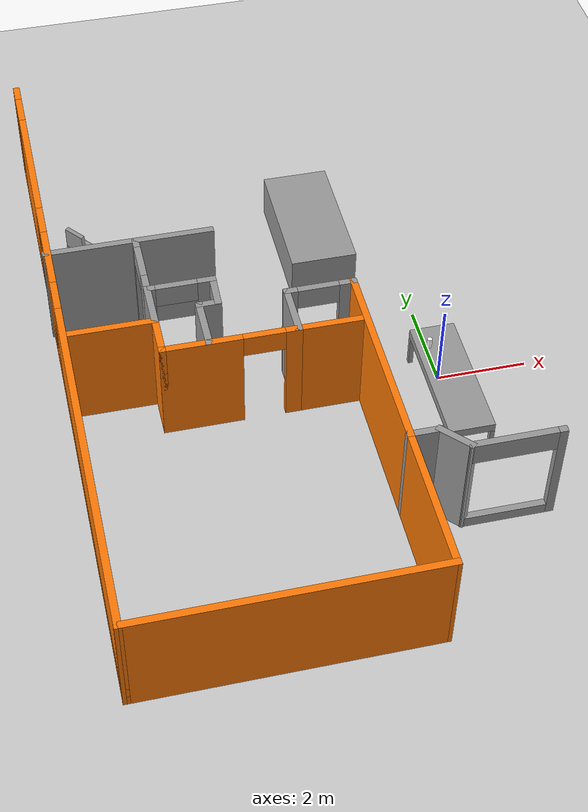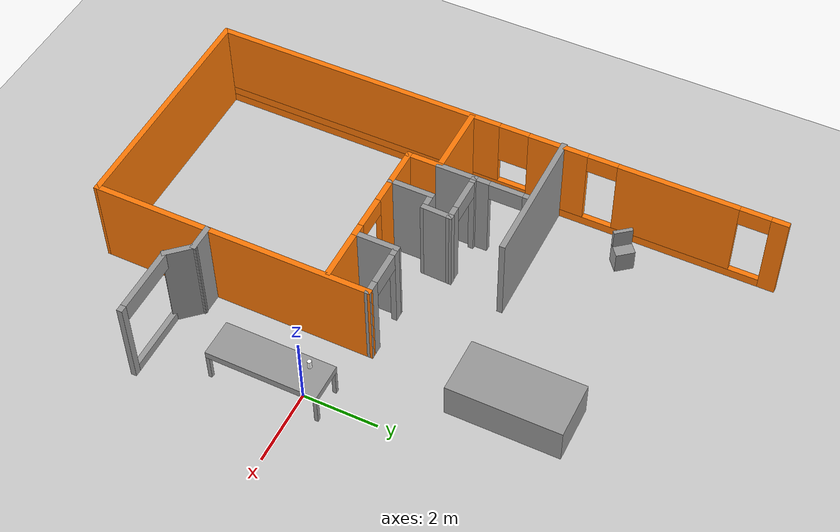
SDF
<sdf version="1.6">
 <world name="default">
  <model name="ground_plane">
   <static>1</static>
   <link name="link">
    <collision name="collision">
     <geometry><plane><normal>0 0 1</normal><size>100 100</size></plane></geometry>
     <surface><friction><ode><mu>100</mu><mu2>50</mu2></ode></friction></surface>
    </collision>
    <visual name="visual">
     <cast_shadows>0</cast_shadows>
     <geometry><plane><normal>0 0 1</normal><size>100 100</size></plane></geometry>
     <material>
      <script><uri>file://media/materials/scripts/gazebo.material</uri><name>Gazebo/Grey</name></script>
     </material>
    </visual>
   </link>
  </model>
  <model name="MDP-Home">
   <pose>0.766606 1.22436 0 0 -0 0</pose>
   <link name="Wall_0">
    <pose>-8.74311 -0.006919 0 0 0 -1.57011</pose>
    <visual name="Wall_0_Visual_0">
     <pose>-7.6212 0 1.25 0 -0 0</pose>
     <geometry><box><size>0.454575 0.15 2.5</size></box></geometry>
     <material>
      <script><uri>file://media/materials/scripts/gazebo.material</uri><name>Gazebo/Grey</name></script>
      <ambient>0.996078 0.47451 0.0196078 1</ambient>
     </material>
     <meta><layer>0</layer></meta>
    </visual>
    <collision name="Wall_0_Collision_0">
     <geometry><box><size>0.454575 0.15 2.5</size></box></geometry>
     <pose>-7.6212 0 1.25 0 -0 0</pose>
    </collision>
    <visual name="Wall_0_Visual_1">
     <pose>0.227288 0 0.125 0 -0 0</pose>
     <geometry><box><size>15.2424 0.15 0.25</size></box></geometry>
     <material>
      <script><uri>file://media/materials/scripts/gazebo.material</uri><name>Gazebo/Grey</name></script>
      <ambient>0.996078 0.47451 0.0196078 1</ambient>
     </material>
     <meta><layer>0</layer></meta>
    </visual>
    <collision name="Wall_0_Collision_1">
     <geometry><box><size>15.2424 0.15 0.25</size></box></geometry>
     <pose>0.227288 0 0.125 0 -0 0</pose>
    </collision>
    <visual name="Wall_0_Visual_2">
     <pose>-5.00939 0 1.375 0 -0 0</pose>
     <geometry><box><size>3.16905 0.15 2.25</size></box></geometry>
     <material>
      <script><uri>file://media/materials/scripts/gazebo.material</uri><name>Gazebo/Grey</name></script>
      <ambient>0.996078 0.47451 0.0196078 1</ambient>
     </material>
     <meta><layer>0</layer></meta>
    </visual>
    <collision name="Wall_0_Collision_2">
     <geometry><box><size>3.16905 0.15 2.25</size></box></geometry>
     <pose>-5.00939 0 1.375 0 -0 0</pose>
    </collision>
    <visual name="Wall_0_Visual_3">
     <pose>-1.82212 0 1.375 0 -0 0</pose>
     <geometry><box><size>1.6055 0.15 2.25</size></box></geometry>
     <material>
      <script><uri>file://media/materials/scripts/gazebo.material</uri><name>Gazebo/Grey</name></script>
      <ambient>0.996078 0.47451 0.0196078 1</ambient>
     </material>
     <meta><layer>0</layer></meta>
    </visual>
    <collision name="Wall_0_Collision_3">
     <geometry><box><size>1.6055 0.15 2.25</size></box></geometry>
     <pose>-1.82212 0 1.375 0 -0 0</pose>
    </collision>
    <visual name="Wall_0_Visual_4">
     <pose>3.41456 0 0.375 0 -0 0</pose>
     <geometry><box><size>8.86785 0.15 0.25</size></box></geometry>
     <material>
      <script><uri>file://media/materials/scripts/gazebo.material</uri><name>Gazebo/Grey</name></script>
      <ambient>0.996078 0.47451 0.0196078 1</ambient>
     </material>
     <meta><layer>0</layer></meta>
    </visual>
    <collision name="Wall_0_Collision_4">
     <geometry><box><size>8.86785 0.15 0.25</size></box></geometry>
     <pose>3.41456 0 0.375 0 -0 0</pose>
    </collision>
    <visual name="Wall_0_Visual_5">
     <pose>3.81456 0 1.5 0 -0 0</pose>
     <geometry><box><size>8.06785 0.15 2</size></box></geometry>
     <material>
      <script><uri>file://media/materials/scripts/gazebo.material</uri><name>Gazebo/Grey</name></script>
      <ambient>0.996078 0.47451 0.0196078 1</ambient>
     </material>
     <meta><layer>0</layer></meta>
    </visual>
    <collision name="Wall_0_Collision_5">
     <geometry><box><size>8.06785 0.15 2</size></box></geometry>
     <pose>3.81456 0 1.5 0 -0 0</pose>
    </collision>
    <visual name="Wall_0_Visual_6">
     <pose>-0.619366 0 1.9 0 -0 0</pose>
     <geometry><box><size>0.8 0.15 1.2</size></box></geometry>
     <material>
      <script><uri>file://media/materials/scripts/gazebo.material</uri><name>Gazebo/Grey</name></script>
      <ambient>0.996078 0.47451 0.0196078 1</ambient>
     </material>
     <meta><layer>0</layer></meta>
    </visual>
    <collision name="Wall_0_Collision_6">
     <geometry><box><size>0.8 0.15 1.2</size></box></geometry>
     <pose>-0.619366 0 1.9 0 -0 0</pose>
    </collision>
    <visual name="Wall_0_Visual_7">
     <pose>-6.99391 0 2.25 0 -0 0</pose>
     <geometry><box><size>0.8 0.15 0.5</size></box></geometry>
     <material>
      <script><uri>file://media/materials/scripts/gazebo.material</uri><name>Gazebo/Grey</name></script>
      <ambient>0.996078 0.47451 0.0196078 1</ambient>
     </material>
     <meta><layer>0</layer></meta>
    </visual>
    <collision name="Wall_0_Collision_7">
     <geometry><box><size>0.8 0.15 0.5</size></box></geometry>
     <pose>-6.99391 0 2.25 0 -0 0</pose>
    </collision>
    <visual name="Wall_0_Visual_8">
     <pose>-3.02487 0 2.25 0 -0 0</pose>
     <geometry><box><size>0.8 0.15 0.5</size></box></geometry>
     <material>
      <script><uri>file://media/materials/scripts/gazebo.material</uri><name>Gazebo/Grey</name></script>
      <ambient>0.996078 0.47451 0.0196078 1</ambient>
     </material>
     <meta><layer>0</layer></meta>
    </visual>
    <collision name="Wall_0_Collision_8">
     <geometry><box><size>0.8 0.15 0.5</size></box></geometry>
     <pose>-3.02487 0 2.25 0 -0 0</pose>
    </collision>
   </link>
   <link name="Wall_131">
    <collision name="Wall_131_Collision">
     <geometry><box><size>4.5 0.15 2.5</size></box></geometry>
     <pose>0 0 1.25 0 -0 0</pose>
    </collision>
    <visual name="Wall_131_Visual">
     <pose>0 0 1.25 0 -0 0</pose>
     <geometry><box><size>4.5 0.15 2.5</size></box></geometry>
     <material>
      <script><uri>file://media/materials/scripts/gazebo.material</uri><name>Gazebo/Grey</name></script>
      <ambient>0.996078 0.47451 0.0196078 1</ambient>
     </material>
     <meta><layer>0</layer></meta>
    </visual>
    <pose>-2.5378 -2.48595 0 0 -0 1.5708</pose>
   </link>
   <link name="Wall_133">
    <collision name="Wall_133_Collision">
     <geometry><box><size>1.5 0.15 2.5</size></box></geometry>
     <pose>0 0 1.25 0 -0 0</pose>
    </collision>
    <visual name="Wall_133_Visual">
     <pose>0 0 1.25 0 -0 0</pose>
     <geometry><box><size>1.5 0.15 2.5</size></box></geometry>
     <material>
      <script><uri>file://media/materials/scripts/gazebo.material</uri><name>Gazebo/Grey</name></script>
      <ambient>0.996078 0.47451 0.0196078 1</ambient>
     </material>
     <meta><layer>0</layer></meta>
    </visual>
    <pose>-3.31137 -1.41633 0 0 -0 3.14159</pose>
   </link>
   <link name="Wall_134">
    <collision name="Wall_134_Collision">
     <geometry><box><size>1.25 0.15 2.5</size></box></geometry>
     <pose>0 0 1.25 0 -0 0</pose>
    </collision>
    <visual name="Wall_134_Visual">
     <pose>0 0 1.25 0 -0 0</pose>
     <geometry><box><size>1.25 0.15 2.5</size></box></geometry>
     <material>
      <script><uri>file://media/materials/scripts/gazebo.material</uri><name>Gazebo/Grey</name></script>
      <ambient>1 1 1 1</ambient>
     </material>
     <meta><layer>0</layer></meta>
    </visual>
    <pose>-3.98637 -0.866325 0 0 -0 1.5708</pose>
   </link>
   <link name="Wall_135">
    <pose>-3.26208 -0.313636 0 0 -0 0.003712</pose>
    <visual name="Wall_135_Visual_0">
     <pose>-0.646197 0 1.25 0 -0 0</pose>
     <geometry><box><size>0.306179 0.15 2.5</size></box></geometry>
     <material>
      <script><uri>file://media/materials/scripts/gazebo.material</uri><name>Gazebo/Grey</name></script>
      <ambient>1 1 1 1</ambient>
     </material>
     <meta><layer>0</layer></meta>
    </visual>
    <collision name="Wall_135_Collision_0">
     <geometry><box><size>0.306179 0.15 2.5</size></box></geometry>
     <pose>-0.646197 0 1.25 0 -0 0</pose>
    </collision>
    <visual name="Wall_135_Visual_1">
     <pose>0.60309 0 1.25 0 -0 0</pose>
     <geometry><box><size>0.392394 0.15 2.5</size></box></geometry>
     <material>
      <script><uri>file://media/materials/scripts/gazebo.material</uri><name>Gazebo/Grey</name></script>
      <ambient>1 1 1 1</ambient>
     </material>
     <meta><layer>0</layer></meta>
    </visual>
    <collision name="Wall_135_Collision_1">
     <geometry><box><size>0.392394 0.15 2.5</size></box></geometry>
     <pose>0.60309 0 1.25 0 -0 0</pose>
    </collision>
    <visual name="Wall_135_Visual_2">
     <pose>-0.043107 0 2.25 0 -0 0</pose>
     <geometry><box><size>0.9 0.15 0.5</size></box></geometry>
     <material>
      <script><uri>file://media/materials/scripts/gazebo.material</uri><name>Gazebo/Grey</name></script>
      <ambient>1 1 1 1</ambient>
     </material>
     <meta><layer>0</layer></meta>
    </visual>
    <collision name="Wall_135_Collision_2">
     <geometry><box><size>0.9 0.15 0.5</size></box></geometry>
     <pose>-0.043107 0 2.25 0 -0 0</pose>
    </collision>
   </link>
   <link name="Wall_137">
    <pose>-5.41137 -1.41633 0 0 -0 3.14159</pose>
    <visual name="Wall_137_Visual_0">
     <pose>-1.32646 0 1.25 0 -0 0</pose>
     <geometry><box><size>0.347086 0.15 2.5</size></box></geometry>
     <material>
      <script><uri>file://media/materials/scripts/gazebo.material</uri><name>Gazebo/Grey</name></script>
      <ambient>0.996078 0.47451 0.0196078 1</ambient>
     </material>
     <meta><layer>0</layer></meta>
    </visual>
    <collision name="Wall_137_Collision_0">
     <geometry><box><size>0.347086 0.15 2.5</size></box></geometry>
     <pose>-1.32646 0 1.25 0 -0 0</pose>
    </collision>
    <visual name="Wall_137_Visual_1">
     <pose>0.623543 0 1.25 0 -0 0</pose>
     <geometry><box><size>1.75291 0.15 2.5</size></box></geometry>
     <material>
      <script><uri>file://media/materials/scripts/gazebo.material</uri><name>Gazebo/Grey</name></script>
      <ambient>0.996078 0.47451 0.0196078 1</ambient>
     </material>
     <meta><layer>0</layer></meta>
    </visual>
    <collision name="Wall_137_Collision_1">
     <geometry><box><size>1.75291 0.15 2.5</size></box></geometry>
     <pose>0.623543 0 1.25 0 -0 0</pose>
    </collision>
    <visual name="Wall_137_Visual_2">
     <pose>-0.702914 0 2.25 0 -0 0</pose>
     <geometry><box><size>0.9 0.15 0.5</size></box></geometry>
     <material>
      <script><uri>file://media/materials/scripts/gazebo.material</uri><name>Gazebo/Grey</name></script>
      <ambient>0.996078 0.47451 0.0196078 1</ambient>
     </material>
     <meta><layer>0</layer></meta>
    </visual>
    <collision name="Wall_137_Collision_2">
     <geometry><box><size>0.9 0.15 0.5</size></box></geometry>
     <pose>-0.702914 0 2.25 0 -0 0</pose>
    </collision>
   </link>
   <link name="Wall_138">
    <collision name="Wall_138_Collision">
     <geometry><box><size>1 0.15 2.5</size></box></geometry>
     <pose>0 0 1.25 0 -0 0</pose>
    </collision>
    <visual name="Wall_138_Visual">
     <pose>0 0 1.25 0 -0 0</pose>
     <geometry><box><size>1 0.15 2.5</size></box></geometry>
     <material>
      <script><uri>file://media/materials/scripts/gazebo.material</uri><name>Gazebo/Grey</name></script>
      <ambient>0.996078 0.47451 0.0196078 1</ambient>
     </material>
     <meta><layer>0</layer></meta>
    </visual>
    <pose>-6.83637 -0.991325 0 0 -0 1.5708</pose>
   </link>
   <link name="Wall_139">
    <collision name="Wall_139_Collision">
     <geometry><box><size>2 0.15 2.5</size></box></geometry>
     <pose>0 0 1.25 0 -0 0</pose>
    </collision>
    <visual name="Wall_139_Visual">
     <pose>0 0 1.25 0 -0 0</pose>
     <geometry><box><size>2 0.15 2.5</size></box></geometry>
     <material>
      <script><uri>file://media/materials/scripts/gazebo.material</uri><name>Gazebo/Grey</name></script>
      <ambient>0.996078 0.47451 0.0196078 1</ambient>
     </material>
     <meta><layer>0</layer></meta>
    </visual>
    <pose>-7.76137 -0.566325 0 0 -0 3.14159</pose>
   </link>
   <link name="Wall_141">
    <collision name="Wall_141_Collision">
     <geometry><box><size>1.10559 0.15 2.5</size></box></geometry>
     <pose>0 0 1.25 0 -0 0</pose>
    </collision>
    <visual name="Wall_141_Visual">
     <pose>0 0 1.25 0 -0 0</pose>
     <geometry><box><size>1.10559 0.15 2.5</size></box></geometry>
     <material>
      <script><uri>file://media/materials/scripts/gazebo.material</uri><name>Gazebo/Grey</name></script>
      <ambient>1 1 1 1</ambient>
     </material>
     <meta><layer>0</layer></meta>
    </visual>
    <pose>-6.83637 -0.088528 0 0 -0 1.5708</pose>
   </link>
   <link name="Wall_142">
    <pose>-6.13522 0.389268 0 0 -0 0</pose>
    <visual name="Wall_142_Visual_0">
     <pose>-0.655259 0 1.25 0 -0 0</pose>
     <geometry><box><size>0.241775 0.15 2.5</size></box></geometry>
     <material>
      <script><uri>file://media/materials/scripts/gazebo.material</uri><name>Gazebo/Grey</name></script>
      <ambient>1 1 1 1</ambient>
     </material>
     <meta><layer>0</layer></meta>
    </visual>
    <collision name="Wall_142_Collision_0">
     <geometry><box><size>0.241775 0.15 2.5</size></box></geometry>
     <pose>-0.655259 0 1.25 0 -0 0</pose>
    </collision>
    <visual name="Wall_142_Visual_1">
     <pose>0.570887 0 1.25 0 -0 0</pose>
     <geometry><box><size>0.410518 0.15 2.5</size></box></geometry>
     <material>
      <script><uri>file://media/materials/scripts/gazebo.material</uri><name>Gazebo/Grey</name></script>
      <ambient>1 1 1 1</ambient>
     </material>
     <meta><layer>0</layer></meta>
    </visual>
    <collision name="Wall_142_Collision_1">
     <geometry><box><size>0.410518 0.15 2.5</size></box></geometry>
     <pose>0.570887 0 1.25 0 -0 0</pose>
    </collision>
    <visual name="Wall_142_Visual_2">
     <pose>-0.084372 0 2.25 0 -0 0</pose>
     <geometry><box><size>0.9 0.15 0.5</size></box></geometry>
     <material>
      <script><uri>file://media/materials/scripts/gazebo.material</uri><name>Gazebo/Grey</name></script>
      <ambient>1 1 1 1</ambient>
     </material>
     <meta><layer>0</layer></meta>
    </visual>
    <collision name="Wall_142_Collision_2">
     <geometry><box><size>0.9 0.15 0.5</size></box></geometry>
     <pose>-0.084372 0 2.25 0 -0 0</pose>
    </collision>
   </link>
   <link name="Wall_145">
    <collision name="Wall_145_Collision">
     <geometry><box><size>0.552293 0.15 2.5</size></box></geometry>
     <pose>0 0 1.25 0 -0 0</pose>
    </collision>
    <visual name="Wall_145_Visual">
     <pose>0 0 1.25 0 -0 0</pose>
     <geometry><box><size>0.552293 0.15 2.5</size></box></geometry>
     <material>
      <script><uri>file://media/materials/scripts/gazebo.material</uri><name>Gazebo/Grey</name></script>
      <ambient>1 1 1 1</ambient>
     </material>
     <meta><layer>0</layer></meta>
    </visual>
    <pose>-5.65934 -0.312691 0 0 -0 3.14159</pose>
   </link>
   <link name="Wall_146">
    <collision name="Wall_146_Collision">
     <geometry><box><size>1.25 0.15 2.5</size></box></geometry>
     <pose>0 0 1.25 0 -0 0</pose>
    </collision>
    <visual name="Wall_146_Visual">
     <pose>0 0 1.25 0 -0 0</pose>
     <geometry><box><size>1.25 0.15 2.5</size></box></geometry>
     <material>
      <script><uri>file://media/materials/scripts/gazebo.material</uri><name>Gazebo/Grey</name></script>
      <ambient>1 1 1 1</ambient>
     </material>
     <meta><layer>0</layer></meta>
    </visual>
    <pose>-5.86049 -0.862691 0 0 0 -1.5708</pose>
   </link>
   <link name="Wall_148">
    <collision name="Wall_148_Collision">
     <geometry><box><size>0.852373 0.15 2.5</size></box></geometry>
     <pose>0 0 1.25 0 -0 0</pose>
    </collision>
    <visual name="Wall_148_Visual">
     <pose>0 0 1.25 0 -0 0</pose>
     <geometry><box><size>0.852373 0.15 2.5</size></box></geometry>
     <material>
      <script><uri>file://media/materials/scripts/gazebo.material</uri><name>Gazebo/Grey</name></script>
      <ambient>1 1 1 1</ambient>
     </material>
     <meta><layer>0</layer></meta>
    </visual>
    <pose>-5.44613 0.048748 0 0 0 -1.60515</pose>
   </link>
   <link name="Wall_151">
    <collision name="Wall_151_Collision">
     <geometry><box><size>3.75 0.15 2.5</size></box></geometry>
     <pose>0 0 1.25 0 -0 0</pose>
    </collision>
    <visual name="Wall_151_Visual">
     <pose>0 0 1.25 0 -0 0</pose>
     <geometry><box><size>3.75 0.15 2.5</size></box></geometry>
     <material>
      <script><uri>file://media/materials/scripts/gazebo.material</uri><name>Gazebo/Grey</name></script>
      <ambient>1 1 1 1</ambient>
     </material>
     <meta><layer>0</layer></meta>
    </visual>
    <pose>-6.98461 1.92195 0 0 -0 0</pose>
   </link>
   <link name="Wall_153">
    <pose>-6.83637 1.13927 0 0 -0 1.5708</pose>
    <visual name="Wall_153_Visual_0">
     <pose>-0.580189 0 1.25 0 -0 0</pose>
     <geometry><box><size>0.489621 0.15 2.5</size></box></geometry>
     <material>
      <script><uri>file://media/materials/scripts/gazebo.material</uri><name>Gazebo/Grey</name></script>
      <ambient>1 1 1 1</ambient>
     </material>
     <meta><layer>0</layer></meta>
    </visual>
    <collision name="Wall_153_Collision_0">
     <geometry><box><size>0.489621 0.15 2.5</size></box></geometry>
     <pose>-0.580189 0 1.25 0 -0 0</pose>
    </collision>
    <visual name="Wall_153_Visual_1">
     <pose>0.694811 0 1.25 0 -0 0</pose>
     <geometry><box><size>0.260379 0.15 2.5</size></box></geometry>
     <material>
      <script><uri>file://media/materials/scripts/gazebo.material</uri><name>Gazebo/Grey</name></script>
      <ambient>1 1 1 1</ambient>
     </material>
     <meta><layer>0</layer></meta>
    </visual>
    <collision name="Wall_153_Collision_1">
     <geometry><box><size>0.260379 0.15 2.5</size></box></geometry>
     <pose>0.694811 0 1.25 0 -0 0</pose>
    </collision>
    <visual name="Wall_153_Visual_2">
     <pose>0.114621 0 2.25 0 -0 0</pose>
     <geometry><box><size>0.9 0.15 0.5</size></box></geometry>
     <material>
      <script><uri>file://media/materials/scripts/gazebo.material</uri><name>Gazebo/Grey</name></script>
      <ambient>1 1 1 1</ambient>
     </material>
     <meta><layer>0</layer></meta>
    </visual>
    <collision name="Wall_153_Collision_2">
     <geometry><box><size>0.9 0.15 0.5</size></box></geometry>
     <pose>0.114621 0 2.25 0 -0 0</pose>
    </collision>
   </link>
   <link name="Wall_84">
    <pose>-0.516292 -5.18335 0 0 -0 3.14159</pose>
    <visual name="Wall_84_Visual_0">
     <pose>-0.910278 0 1.25 0 -0 0</pose>
     <geometry><box><size>0.179444 0.15 2.5</size></box></geometry>
     <material>
      <script><uri>file://media/materials/scripts/gazebo.material</uri><name>Gazebo/Grey</name></script>
      <ambient>1 1 1 1</ambient>
     </material>
     <meta><layer>0</layer></meta>
    </visual>
    <collision name="Wall_84_Collision_0">
     <geometry><box><size>0.179444 0.15 2.5</size></box></geometry>
     <pose>-0.910278 0 1.25 0 -0 0</pose>
    </collision>
    <visual name="Wall_84_Visual_1">
     <pose>0.089722 0 0.125 0 -0 0</pose>
     <geometry><box><size>1.82056 0.15 0.25</size></box></geometry>
     <material>
      <script><uri>file://media/materials/scripts/gazebo.material</uri><name>Gazebo/Grey</name></script>
      <ambient>1 1 1 1</ambient>
     </material>
     <meta><layer>0</layer></meta>
    </visual>
    <collision name="Wall_84_Collision_1">
     <geometry><box><size>1.82056 0.15 0.25</size></box></geometry>
     <pose>0.089722 0 0.125 0 -0 0</pose>
    </collision>
    <visual name="Wall_84_Visual_2">
     <pose>0.970722 0 1.375 0 -0 0</pose>
     <geometry><box><size>0.058556 0.15 2.25</size></box></geometry>
     <material>
      <script><uri>file://media/materials/scripts/gazebo.material</uri><name>Gazebo/Grey</name></script>
      <ambient>1 1 1 1</ambient>
     </material>
     <meta><layer>0</layer></meta>
    </visual>
    <collision name="Wall_84_Collision_2">
     <geometry><box><size>0.058556 0.15 2.25</size></box></geometry>
     <pose>0.970722 0 1.375 0 -0 0</pose>
    </collision>
    <visual name="Wall_84_Visual_3">
     <pose>0.060444 0 2.25 0 -0 0</pose>
     <geometry><box><size>1.762 0.15 0.5</size></box></geometry>
     <material>
      <script><uri>file://media/materials/scripts/gazebo.material</uri><name>Gazebo/Grey</name></script>
      <ambient>1 1 1 1</ambient>
     </material>
     <meta><layer>0</layer></meta>
    </visual>
    <collision name="Wall_84_Collision_3">
     <geometry><box><size>1.762 0.15 0.5</size></box></geometry>
     <pose>0.060444 0 2.25 0 -0 0</pose>
    </collision>
   </link>
   <link name="Wall_86">
    <collision name="Wall_86_Collision">
     <geometry><box><size>0.862046 0.15 2.5</size></box></geometry>
     <pose>0 0 1.25 0 -0 0</pose>
    </collision>
    <visual name="Wall_86_Visual">
     <pose>0 0 1.25 0 -0 0</pose>
     <geometry><box><size>0.862046 0.15 2.5</size></box></geometry>
     <material>
      <script><uri>file://media/materials/scripts/gazebo.material</uri><name>Gazebo/Grey</name></script>
      <ambient>1 1 1 1</ambient>
     </material>
     <meta><layer>0</layer></meta>
    </visual>
    <pose>-1.69556 -4.92215 0 0 0 -0.823044</pose>
   </link>
   <link name="Wall_88">
    <collision name="Wall_88_Collision">
     <geometry><box><size>0.75 0.15 2.5</size></box></geometry>
     <pose>0 0 1.25 0 -0 0</pose>
    </collision>
    <visual name="Wall_88_Visual">
     <pose>0 0 1.25 0 -0 0</pose>
     <geometry><box><size>0.75 0.15 2.5</size></box></geometry>
     <material>
      <script><uri>file://media/materials/scripts/gazebo.material</uri><name>Gazebo/Grey</name></script>
      <ambient>1 1 1 1</ambient>
     </material>
     <meta><layer>0</layer></meta>
    </visual>
    <pose>-2.2378 -4.66095 0 0 -0 3.14159</pose>
   </link>
   <link name="Wall_94">
    <collision name="Wall_94_Collision">
     <geometry><box><size>3.25 0.15 2.5</size></box></geometry>
     <pose>0 0 1.25 0 -0 0</pose>
    </collision>
    <visual name="Wall_94_Visual">
     <pose>0 0 1.25 0 -0 0</pose>
     <geometry><box><size>3.25 0.15 2.5</size></box></geometry>
     <material>
      <script><uri>file://media/materials/scripts/gazebo.material</uri><name>Gazebo/Grey</name></script>
      <ambient>0.996078 0.47451 0.0196078 1</ambient>
     </material>
     <meta><layer>0</layer></meta>
    </visual>
    <pose>-2.5378 -6.21095 0 0 0 -1.5708</pose>
   </link>
   <link name="Wall_98">
    <collision name="Wall_98_Collision">
     <geometry><box><size>6.35 0.15 2.5</size></box></geometry>
     <pose>0 0 1.25 0 -0 0</pose>
    </collision>
    <visual name="Wall_98_Visual">
     <pose>0 0 1.25 0 -0 0</pose>
     <geometry><box><size>6.35 0.15 2.5</size></box></geometry>
     <material>
      <script><uri>file://media/materials/scripts/gazebo.material</uri><name>Gazebo/Grey</name></script>
      <ambient>0.996078 0.47451 0.0196078 1</ambient>
     </material>
     <meta><layer>0</layer></meta>
    </visual>
    <pose>-5.63779 -7.77067 0 0 0 -3.13845</pose>
   </link>
   <static>1</static>
  </model>
  <model name="Island">
   <link name="link_0">
    <inertial>
     <mass>1</mass>
     <inertia>
      <ixx>0.166667</ixx>
      <ixy>0</ixy>
      <ixz>0</ixz>
      <iyy>0.166667</iyy>
      <iyz>0</iyz>
      <izz>0.166667</izz>
     </inertia>
    </inertial>
    <visual name="visual">
     <geometry><box><size>1.5 3 1</size></box></geometry>
     <material>
      <lighting>1</lighting>
      <script><uri>file://media/materials/scripts/gazebo.material</uri><name>Gazebo/Grey</name></script>
      <shader type="pixel"><normal_map>__default__</normal_map></shader>
      <ambient>0.3 0.3 0.3 1</ambient>
      <diffuse>0.7 0.7 0.7 1</diffuse>
      <specular>0.01 0.01 0.01 1</specular>
      <emissive>0 0 0 1</emissive>
     </material>
    </visual>
    <collision name="collision">
     <geometry><box><size>1.5 3 1</size></box></geometry>
     <surface>
      <friction>
       <ode><mu>1</mu><mu2>1</mu2><fdir1>0 0 0</fdir1><slip1>0</slip1><slip2>0</slip2></ode>
       <torsional>
        <coefficient>1</coefficient>
        <patch_radius>0</patch_radius>
        <surface_radius>0</surface_radius>
        <use_patch_radius>1</use_patch_radius>
        <ode><slip>0</slip></ode>
       </torsional>
      </friction>
      <bounce><restitution_coefficient>0</restitution_coefficient><threshold>1e+06</threshold></bounce>
      <contact>
       <collide_without_contact>0</collide_without_contact>
       <collide_without_contact_bitmask>1</collide_without_contact_bitmask>
       <collide_bitmask>1</collide_bitmask>
       <ode>
        <soft_cfm>0</soft_cfm>
        <soft_erp>0.2</soft_erp>
        <kp>1e+13</kp>
        <kd>1</kd>
        <max_vel>0.01</max_vel>
        <min_depth>0</min_depth>
       </ode>
       <bullet>
        <split_impulse>1</split_impulse>
        <split_impulse_penetration_threshold>-0.01</split_impulse_penetration_threshold>
        <soft_cfm>0</soft_cfm>
        <soft_erp>0.2</soft_erp>
        <kp>1e+13</kp>
        <kd>1</kd>
       </bullet>
      </contact>
     </surface>
    </collision>
   </link>
   <static>0</static>
   <pose>-1.7979 4.72135 0.499995 -0 6e-06 6e-06</pose>
  </model>
  <model name="Chain-No_Arms_1">
   <link name="link_0">
    <pose>0 0.0762 -0.2794 0 -0 0</pose>
    <inertial>
     <mass>1</mass>
     <inertia>
      <ixx>0.166667</ixx>
      <ixy>0</ixy>
      <ixz>0</ixz>
      <iyy>0.166667</iyy>
      <iyz>0</iyz>
      <izz>0.166667</izz>
     </inertia>
    </inertial>
    <visual name="visual">
     <geometry><box><size>0.508 0.4064 0.6096</size></box></geometry>
     <material>
      <lighting>1</lighting>
      <script><uri>file://media/materials/scripts/gazebo.material</uri><name>Gazebo/Grey</name></script>
      <shader type="pixel"><normal_map>__default__</normal_map></shader>
      <ambient>0.3 0.3 0.3 1</ambient>
      <diffuse>0.7 0.7 0.7 1</diffuse>
      <specular>0.01 0.01 0.01 1</specular>
      <emissive>0 0 0 1</emissive>
     </material>
    </visual>
    <collision name="collision">
     <geometry><box><size>0.508 0.406 0.6096</size></box></geometry>
     <surface>
      <friction>
       <ode><mu>1</mu><mu2>1</mu2><fdir1>0 0 0</fdir1><slip1>0</slip1><slip2>0</slip2></ode>
       <torsional>
        <coefficient>1</coefficient>
        <patch_radius>0</patch_radius>
        <surface_radius>0</surface_radius>
        <use_patch_radius>1</use_patch_radius>
        <ode><slip>0</slip></ode>
       </torsional>
      </friction>
      <bounce><restitution_coefficient>0</restitution_coefficient><threshold>1e+06</threshold></bounce>
      <contact>
       <collide_without_contact>0</collide_without_contact>
       <collide_without_contact_bitmask>1</collide_without_contact_bitmask>
       <collide_bitmask>1</collide_bitmask>
       <ode>
        <soft_cfm>0</soft_cfm>
        <soft_erp>0.2</soft_erp>
        <kp>1e+13</kp>
        <kd>1</kd>
        <max_vel>0.01</max_vel>
        <min_depth>0</min_depth>
       </ode>
       <bullet>
        <split_impulse>1</split_impulse>
        <split_impulse_penetration_threshold>-0.01</split_impulse_penetration_threshold>
        <soft_cfm>0</soft_cfm>
        <soft_erp>0.2</soft_erp>
        <kp>1e+13</kp>
        <kd>1</kd>
       </bullet>
      </contact>
     </surface>
    </collision>
   </link>
   <link name="link_1">
    <pose>0 -0.0762 0.2794 0 -0 0</pose>
    <inertial>
     <mass>1</mass>
     <inertia>
      <ixx>0.166667</ixx>
      <ixy>0</ixy>
      <ixz>0</ixz>
      <iyy>0.166667</iyy>
      <iyz>0</iyz>
      <izz>0.166667</izz>
     </inertia>
    </inertial>
    <visual name="visual">
     <geometry><box><size>0.508 0.1016 0.508</size></box></geometry>
     <material>
      <lighting>1</lighting>
      <script><uri>file://media/materials/scripts/gazebo.material</uri><name>Gazebo/Grey</name></script>
      <shader type="pixel"><normal_map>__default__</normal_map></shader>
      <ambient>0.3 0.3 0.3 1</ambient>
      <diffuse>0.7 0.7 0.7 1</diffuse>
      <specular>0.01 0.01 0.01 1</specular>
      <emissive>0 0 0 1</emissive>
     </material>
    </visual>
    <collision name="collision">
     <geometry><box><size>0.508 0.1016 0.508</size></box></geometry>
     <surface>
      <friction>
       <ode><mu>1</mu><mu2>1</mu2><fdir1>0 0 0</fdir1><slip1>0</slip1><slip2>0</slip2></ode>
       <torsional>
        <coefficient>1</coefficient>
        <patch_radius>0</patch_radius>
        <surface_radius>0</surface_radius>
        <use_patch_radius>1</use_patch_radius>
        <ode><slip>0</slip></ode>
       </torsional>
      </friction>
      <bounce><restitution_coefficient>0</restitution_coefficient><threshold>1e+06</threshold></bounce>
      <contact>
       <collide_without_contact>0</collide_without_contact>
       <collide_without_contact_bitmask>1</collide_without_contact_bitmask>
       <collide_bitmask>1</collide_bitmask>
       <ode>
        <soft_cfm>0</soft_cfm>
        <soft_erp>0.2</soft_erp>
        <kp>1e+13</kp>
        <kd>1</kd>
        <max_vel>0.01</max_vel>
        <min_depth>0</min_depth>
       </ode>
       <bullet>
        <split_impulse>1</split_impulse>
        <split_impulse_penetration_threshold>-0.01</split_impulse_penetration_threshold>
        <soft_cfm>0</soft_cfm>
        <soft_erp>0.2</soft_erp>
        <kp>1e+13</kp>
        <kd>1</kd>
       </bullet>
      </contact>
     </surface>
    </collision>
   </link>
   <joint name="link_0_JOINT_0" type="revolute">
    <parent>link_0</parent>
    <child>link_1</child>
    <axis>
     <xyz>0 0 1</xyz>
     <use_parent_model_frame>0</use_parent_model_frame>
     <limit>
      <lower>-1.79769e+308</lower>
      <upper>1.79769e+308</upper>
      <effort>-1</effort>
      <velocity>-1</velocity>
     </limit>
     <dynamics>
      <spring_reference>0</spring_reference>
      <spring_stiffness>0</spring_stiffness>
      <damping>0</damping>
     </dynamics>
    </axis>
    <physics>
     <ode><limit><cfm>0</cfm><erp>0.2</erp></limit><suspension><cfm>0</cfm><erp>0.2</erp></suspension></ode>
    </physics>
   </joint>
   <static>0</static>
   <pose>-7.1657 5.241 0.584199 -1e-06 -3e-06 -0.890971</pose>
  </model>
  <model name="Dining_Table">
   <link name="link_1">
    <pose>0 -0 0.38 0 -0 0</pose>
    <inertial>
     <mass>1</mass>
     <inertia>
      <ixx>0.166667</ixx>
      <ixy>0</ixy>
      <ixz>0</ixz>
      <iyy>0.166667</iyy>
      <iyz>0</iyz>
      <izz>0.166667</izz>
     </inertia>
     <pose>0 0 1.25 0 -0 0</pose>
    </inertial>
    <visual name="visual">
     <geometry><box><size>1 3 0.2</size></box></geometry>
     <material>
      <lighting>1</lighting>
      <script><uri>file://media/materials/scripts/gazebo.material</uri><name>Gazebo/Grey</name></script>
      <shader type="pixel"><normal_map>__default__</normal_map></shader>
      <ambient>0.3 0.3 0.3 1</ambient>
      <diffuse>0.7 0.7 0.7 1</diffuse>
      <specular>0.01 0.01 0.01 1</specular>
      <emissive>0 0 0 1</emissive>
     </material>
    </visual>
    <collision name="collision">
     <geometry><box><size>1 3 0.2</size></box></geometry>
     <surface>
      <friction>
       <ode><mu>1</mu><mu2>1</mu2><fdir1>0 0 0</fdir1><slip1>0</slip1><slip2>0</slip2></ode>
       <torsional>
        <coefficient>1</coefficient>
        <patch_radius>0</patch_radius>
        <surface_radius>0</surface_radius>
        <use_patch_radius>1</use_patch_radius>
        <ode><slip>0</slip></ode>
       </torsional>
      </friction>
      <bounce><restitution_coefficient>0</restitution_coefficient><threshold>1e+06</threshold></bounce>
      <contact>
       <collide_without_contact>0</collide_without_contact>
       <collide_without_contact_bitmask>1</collide_without_contact_bitmask>
       <collide_bitmask>1</collide_bitmask>
       <ode>
        <soft_cfm>0</soft_cfm>
        <soft_erp>0.2</soft_erp>
        <kp>1e+13</kp>
        <kd>1</kd>
        <max_vel>0.01</max_vel>
        <min_depth>0</min_depth>
       </ode>
       <bullet>
        <split_impulse>1</split_impulse>
        <split_impulse_penetration_threshold>-0.01</split_impulse_penetration_threshold>
        <soft_cfm>0</soft_cfm>
        <soft_erp>0.2</soft_erp>
        <kp>1e+13</kp>
        <kd>1</kd>
       </bullet>
      </contact>
     </surface>
    </collision>
   </link>
   <link name="link_3">
    <pose>-0.45 -1.45 -0.095 0 -0 0</pose>
    <inertial>
     <mass>1</mass>
     <inertia>
      <ixx>0.166667</ixx>
      <ixy>0</ixy>
      <ixz>0</ixz>
      <iyy>0.166667</iyy>
      <iyz>0</iyz>
      <izz>0.166667</izz>
     </inertia>
    </inertial>
    <visual name="visual">
     <geometry><box><size>0.1 0.1 0.75</size></box></geometry>
     <material>
      <lighting>1</lighting>
      <script><uri>file://media/materials/scripts/gazebo.material</uri><name>Gazebo/Grey</name></script>
      <shader type="pixel"><normal_map>__default__</normal_map></shader>
      <ambient>0.3 0.3 0.3 1</ambient>
      <diffuse>0.7 0.7 0.7 1</diffuse>
      <specular>0.01 0.01 0.01 1</specular>
      <emissive>0 0 0 1</emissive>
     </material>
    </visual>
    <collision name="collision">
     <geometry><box><size>0.1 0.1 0.75</size></box></geometry>
     <surface>
      <friction>
       <ode><mu>1</mu><mu2>1</mu2><fdir1>0 0 0</fdir1><slip1>0</slip1><slip2>0</slip2></ode>
       <torsional>
        <coefficient>1</coefficient>
        <patch_radius>0</patch_radius>
        <surface_radius>0</surface_radius>
        <use_patch_radius>1</use_patch_radius>
        <ode><slip>0</slip></ode>
       </torsional>
      </friction>
      <bounce><restitution_coefficient>0</restitution_coefficient><threshold>1e+06</threshold></bounce>
      <contact>
       <collide_without_contact>0</collide_without_contact>
       <collide_without_contact_bitmask>1</collide_without_contact_bitmask>
       <collide_bitmask>1</collide_bitmask>
       <ode>
        <soft_cfm>0</soft_cfm>
        <soft_erp>0.2</soft_erp>
        <kp>1e+13</kp>
        <kd>1</kd>
        <max_vel>0.01</max_vel>
        <min_depth>0</min_depth>
       </ode>
       <bullet>
        <split_impulse>1</split_impulse>
        <split_impulse_penetration_threshold>-0.01</split_impulse_penetration_threshold>
        <soft_cfm>0</soft_cfm>
        <soft_erp>0.2</soft_erp>
        <kp>1e+13</kp>
        <kd>1</kd>
       </bullet>
      </contact>
     </surface>
    </collision>
   </link>
   <link name="link_3_clone">
    <pose>0.45 1.45 -0.095 0 -0 0</pose>
    <inertial>
     <mass>1</mass>
     <inertia>
      <ixx>0.166667</ixx>
      <ixy>0</ixy>
      <ixz>0</ixz>
      <iyy>0.166667</iyy>
      <iyz>0</iyz>
      <izz>0.166667</izz>
     </inertia>
    </inertial>
    <visual name="visual">
     <geometry><box><size>0.1 0.1 0.75</size></box></geometry>
     <material>
      <lighting>1</lighting>
      <script><uri>file://media/materials/scripts/gazebo.material</uri><name>Gazebo/Grey</name></script>
      <shader type="pixel"><normal_map>__default__</normal_map></shader>
      <ambient>0.3 0.3 0.3 1</ambient>
      <diffuse>0.7 0.7 0.7 1</diffuse>
      <specular>0.01 0.01 0.01 1</specular>
      <emissive>0 0 0 1</emissive>
     </material>
    </visual>
    <collision name="collision">
     <geometry><box><size>0.1 0.1 0.75</size></box></geometry>
     <surface>
      <friction>
       <ode><mu>1</mu><mu2>1</mu2><fdir1>0 0 0</fdir1><slip1>0</slip1><slip2>0</slip2></ode>
       <torsional>
        <coefficient>1</coefficient>
        <patch_radius>0</patch_radius>
        <surface_radius>0</surface_radius>
        <use_patch_radius>1</use_patch_radius>
        <ode><slip>0</slip></ode>
       </torsional>
      </friction>
      <bounce><restitution_coefficient>0</restitution_coefficient><threshold>1e+06</threshold></bounce>
      <contact>
       <collide_without_contact>0</collide_without_contact>
       <collide_without_contact_bitmask>1</collide_without_contact_bitmask>
       <collide_bitmask>1</collide_bitmask>
       <ode>
        <soft_cfm>0</soft_cfm>
        <soft_erp>0.2</soft_erp>
        <kp>1e+13</kp>
        <kd>1</kd>
        <max_vel>0.01</max_vel>
        <min_depth>0</min_depth>
       </ode>
       <bullet>
        <split_impulse>1</split_impulse>
        <split_impulse_penetration_threshold>-0.01</split_impulse_penetration_threshold>
        <soft_cfm>0</soft_cfm>
        <soft_erp>0.2</soft_erp>
        <kp>1e+13</kp>
        <kd>1</kd>
       </bullet>
      </contact>
     </surface>
    </collision>
   </link>
   <link name="link_3_clone_clone">
    <pose>-0.45 1.45 -0.095 0 -0 0</pose>
    <inertial>
     <mass>1</mass>
     <inertia>
      <ixx>0.166667</ixx>
      <ixy>0</ixy>
      <ixz>0</ixz>
      <iyy>0.166667</iyy>
      <iyz>0</iyz>
      <izz>0.166667</izz>
     </inertia>
    </inertial>
    <visual name="visual">
     <geometry><box><size>0.1 0.1 0.75</size></box></geometry>
     <material>
      <lighting>1</lighting>
      <script><uri>file://media/materials/scripts/gazebo.material</uri><name>Gazebo/Grey</name></script>
      <shader type="pixel"><normal_map>__default__</normal_map></shader>
      <ambient>0.3 0.3 0.3 1</ambient>
      <diffuse>0.7 0.7 0.7 1</diffuse>
      <specular>0.01 0.01 0.01 1</specular>
      <emissive>0 0 0 1</emissive>
     </material>
    </visual>
    <collision name="collision">
     <geometry><box><size>0.1 0.1 0.75</size></box></geometry>
     <surface>
      <friction>
       <ode><mu>1</mu><mu2>1</mu2><fdir1>0 0 0</fdir1><slip1>0</slip1><slip2>0</slip2></ode>
       <torsional>
        <coefficient>1</coefficient>
        <patch_radius>0</patch_radius>
        <surface_radius>0</surface_radius>
        <use_patch_radius>1</use_patch_radius>
        <ode><slip>0</slip></ode>
       </torsional>
      </friction>
      <bounce><restitution_coefficient>0</restitution_coefficient><threshold>1e+06</threshold></bounce>
      <contact>
       <collide_without_contact>0</collide_without_contact>
       <collide_without_contact_bitmask>1</collide_without_contact_bitmask>
       <collide_bitmask>1</collide_bitmask>
       <ode>
        <soft_cfm>0</soft_cfm>
        <soft_erp>0.2</soft_erp>
        <kp>1e+13</kp>
        <kd>1</kd>
        <max_vel>0.01</max_vel>
        <min_depth>0</min_depth>
       </ode>
       <bullet>
        <split_impulse>1</split_impulse>
        <split_impulse_penetration_threshold>-0.01</split_impulse_penetration_threshold>
        <soft_cfm>0</soft_cfm>
        <soft_erp>0.2</soft_erp>
        <kp>1e+13</kp>
        <kd>1</kd>
       </bullet>
      </contact>
     </surface>
    </collision>
   </link>
   <link name="link_3_clone_clone_clone">
    <pose>0.45 -1.45 -0.095 0 -0 0</pose>
    <inertial>
     <mass>1</mass>
     <inertia>
      <ixx>0.166667</ixx>
      <ixy>0</ixy>
      <ixz>0</ixz>
      <iyy>0.166667</iyy>
      <iyz>0</iyz>
      <izz>0.166667</izz>
     </inertia>
    </inertial>
    <visual name="visual">
     <geometry><box><size>0.1 0.1 0.75</size></box></geometry>
     <material>
      <lighting>1</lighting>
      <script><uri>file://media/materials/scripts/gazebo.material</uri><name>Gazebo/Grey</name></script>
      <shader type="pixel"><normal_map>__default__</normal_map></shader>
      <ambient>0.3 0.3 0.3 1</ambient>
      <diffuse>0.7 0.7 0.7 1</diffuse>
      <specular>0.01 0.01 0.01 1</specular>
      <emissive>0 0 0 1</emissive>
     </material>
    </visual>
    <collision name="collision">
     <geometry><box><size>0.1 0.1 0.75</size></box></geometry>
     <surface>
      <friction>
       <ode><mu>1</mu><mu2>1</mu2><fdir1>0 0 0</fdir1><slip1>0</slip1><slip2>0</slip2></ode>
       <torsional>
        <coefficient>1</coefficient>
        <patch_radius>0</patch_radius>
        <surface_radius>0</surface_radius>
        <use_patch_radius>1</use_patch_radius>
        <ode><slip>0</slip></ode>
       </torsional>
      </friction>
      <bounce><restitution_coefficient>0</restitution_coefficient><threshold>1e+06</threshold></bounce>
      <contact>
       <collide_without_contact>0</collide_without_contact>
       <collide_without_contact_bitmask>1</collide_without_contact_bitmask>
       <collide_bitmask>1</collide_bitmask>
       <ode>
        <soft_cfm>0</soft_cfm>
        <soft_erp>0.2</soft_erp>
        <kp>1e+13</kp>
        <kd>1</kd>
        <max_vel>0.01</max_vel>
        <min_depth>0</min_depth>
       </ode>
       <bullet>
        <split_impulse>1</split_impulse>
        <split_impulse_penetration_threshold>-0.01</split_impulse_penetration_threshold>
        <soft_cfm>0</soft_cfm>
        <soft_erp>0.2</soft_erp>
        <kp>1e+13</kp>
        <kd>1</kd>
       </bullet>
      </contact>
     </surface>
    </collision>
   </link>
   <joint name="link_1_JOINT_6" type="revolute">
    <parent>link_1</parent>
    <child>link_3</child>
    <axis>
     <xyz>0 0 1</xyz>
     <use_parent_model_frame>0</use_parent_model_frame>
     <limit>
      <lower>-1.79769e+308</lower>
      <upper>1.79769e+308</upper>
      <effort>-1</effort>
      <velocity>-1</velocity>
     </limit>
     <dynamics>
      <spring_reference>0</spring_reference>
      <spring_stiffness>0</spring_stiffness>
      <damping>0</damping>
     </dynamics>
    </axis>
    <physics>
     <ode><limit><cfm>0</cfm><erp>0.2</erp></limit><suspension><cfm>0</cfm><erp>0.2</erp></suspension></ode>
    </physics>
   </joint>
   <joint name="link_1_JOINT_7" type="revolute">
    <parent>link_1</parent>
    <child>link_3_clone</child>
    <axis>
     <xyz>0 0 1</xyz>
     <use_parent_model_frame>0</use_parent_model_frame>
     <limit>
      <lower>-1.79769e+308</lower>
      <upper>1.79769e+308</upper>
      <effort>-1</effort>
      <velocity>-1</velocity>
     </limit>
     <dynamics>
      <spring_reference>0</spring_reference>
      <spring_stiffness>0</spring_stiffness>
      <damping>0</damping>
     </dynamics>
    </axis>
    <physics>
     <ode><limit><cfm>0</cfm><erp>0.2</erp></limit><suspension><cfm>0</cfm><erp>0.2</erp></suspension></ode>
    </physics>
   </joint>
   <joint name="link_1_JOINT_8" type="revolute">
    <parent>link_1</parent>
    <child>link_3_clone_clone_clone</child>
    <axis>
     <xyz>0 0 1</xyz>
     <use_parent_model_frame>0</use_parent_model_frame>
     <limit>
      <lower>-1.79769e+308</lower>
      <upper>1.79769e+308</upper>
      <effort>-1</effort>
      <velocity>-1</velocity>
     </limit>
     <dynamics>
      <spring_reference>0</spring_reference>
      <spring_stiffness>0</spring_stiffness>
      <damping>0</damping>
     </dynamics>
    </axis>
    <physics>
     <ode><limit><cfm>0</cfm><erp>0.2</erp></limit><suspension><cfm>0</cfm><erp>0.2</erp></suspension></ode>
    </physics>
   </joint>
   <joint name="link_1_JOINT_9" type="revolute">
    <parent>link_1</parent>
    <child>link_3_clone_clone</child>
    <axis>
     <xyz>0 0 1</xyz>
     <use_parent_model_frame>0</use_parent_model_frame>
     <limit>
      <lower>-1.79769e+308</lower>
      <upper>1.79769e+308</upper>
      <effort>-1</effort>
      <velocity>-1</velocity>
     </limit>
     <dynamics>
      <spring_reference>0</spring_reference>
      <spring_stiffness>0</spring_stiffness>
      <damping>0</damping>
     </dynamics>
    </axis>
    <physics>
     <ode><limit><cfm>0</cfm><erp>0.2</erp></limit><suspension><cfm>0</cfm><erp>0.2</erp></suspension></ode>
    </physics>
   </joint>
   <static>0</static>
   <pose>-0.010847 -0.822961 0.469999 1e-06 -2e-06 -0.002279</pose>
  </model>
  <model name="beer">
   <link name="link">
    <pose>0.25 0.25 1.05 0 -0 0</pose>
    <inertial>
     <mass>0.39</mass>
     <inertia><ixx>0.00058</ixx><ixy>0</ixy><ixz>0</ixz><iyy>0.00058</iyy><iyz>0</iyz><izz>0.00019</izz></inertia>
    </inertial>
    <visual name="visual">
     <geometry><cylinder><radius>0.055</radius><length>0.23</length></cylinder></geometry>
     <material>
      <script>
       <uri>model://beer/materials/scripts</uri>
       <uri>model://beer/materials/textures</uri>
       <name>Beer/Diffuse</name>
      </script>
      <shader type="pixel"><normal_map>__default__</normal_map></shader>
      <ambient>1 1 1 1</ambient>
      <diffuse>1 1 1 1</diffuse>
      <specular>0 0 0 1</specular>
      <emissive>0 0 0 1</emissive>
     </material>
    </visual>
    <collision name="collision">
     <geometry><cylinder><radius>0.055</radius><length>0.23</length></cylinder></geometry>
     <surface>
      <friction>
       <ode><mu>1</mu><mu2>1</mu2><fdir1>0 0 0</fdir1><slip1>0</slip1><slip2>0</slip2></ode>
       <torsional>
        <coefficient>1</coefficient>
        <patch_radius>0</patch_radius>
        <surface_radius>0</surface_radius>
        <use_patch_radius>1</use_patch_radius>
        <ode><slip>0</slip></ode>
       </torsional>
      </friction>
      <bounce><restitution_coefficient>0</restitution_coefficient><threshold>1e+06</threshold></bounce>
      <contact>
       <collide_without_contact>0</collide_without_contact>
       <collide_without_contact_bitmask>1</collide_without_contact_bitmask>
       <collide_bitmask>1</collide_bitmask>
       <ode>
        <soft_cfm>0</soft_cfm>
        <soft_erp>0.2</soft_erp>
        <kp>1e+13</kp>
        <kd>1</kd>
        <max_vel>0.01</max_vel>
        <min_depth>0</min_depth>
       </ode>
       <bullet>
        <split_impulse>1</split_impulse>
        <split_impulse_penetration_threshold>-0.01</split_impulse_penetration_threshold>
        <soft_cfm>0</soft_cfm>
        <soft_erp>0.2</soft_erp>
        <kp>1e+13</kp>
        <kd>1</kd>
       </bullet>
      </contact>
     </surface>
    </collision>
   </link>
   <static>0</static>
   <pose>-0.466806 -0.149273 0.014987 3.1e-05 1.4e-05 0.057183</pose>
  </model>
 </world>
</sdf>
